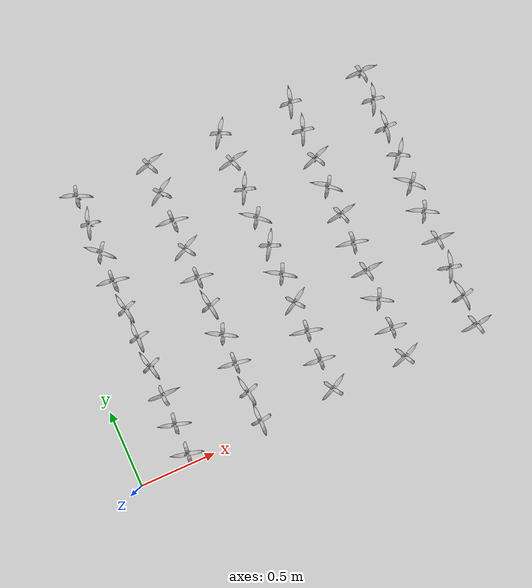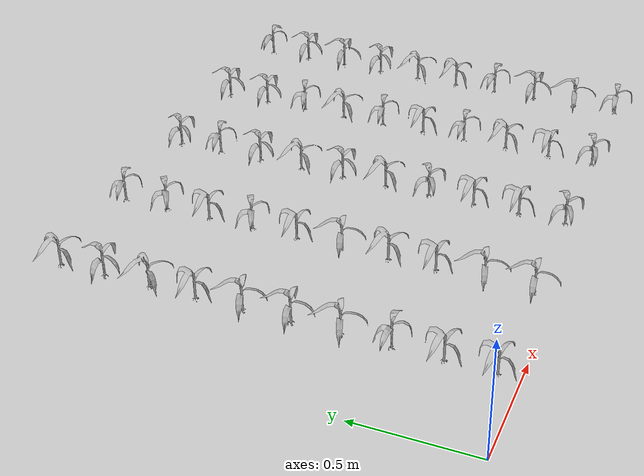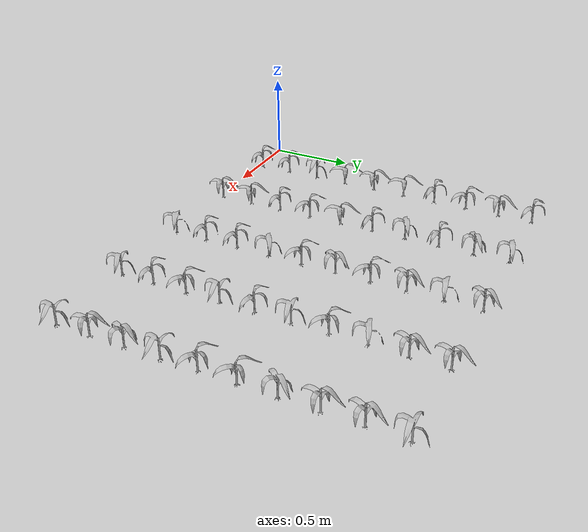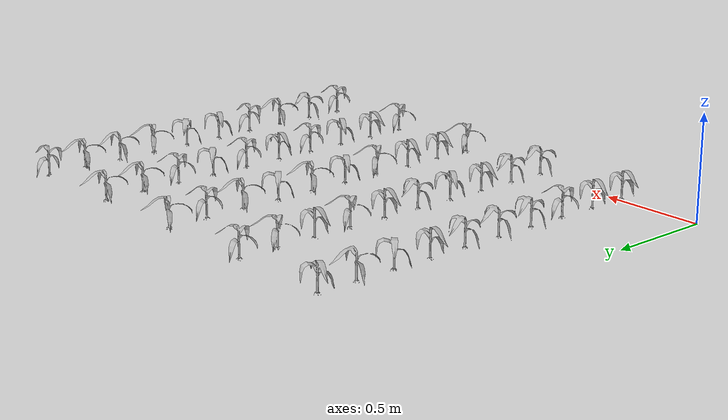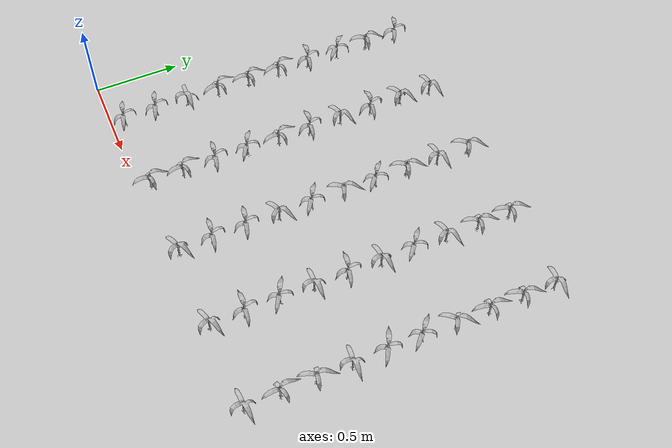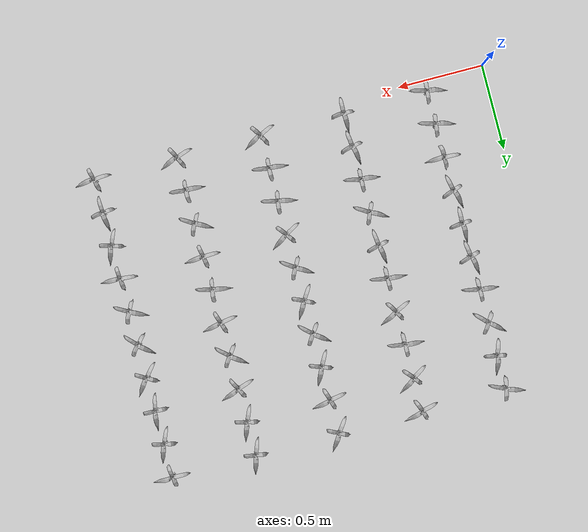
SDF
<sdf version="1.7">
 <world name="default">
  <model name="maize_0.36262630970692733_0.07500000000000018">
   <static>1</static>
   <link name="link">
    <inertial>
     <mass>0.2</mass>
     <inertia>
      <ixx>0.166667</ixx>
      <ixy>0</ixy>
      <ixz>0</ixz>
      <iyy>0.166667</iyy>
      <iyz>0</iyz>
      <izz>0.166667</izz>
     </inertia>
    </inertial>
    <collision name="collision">
     <geometry><mesh><uri>model://corn_3/meshes/corn.dae</uri><scale>0.25 0.25 0.25</scale></mesh></geometry>
     <surface>
      <friction><ode><mu>0</mu><mu2>0</mu2></ode></friction>
      <contact><ode><kp>0</kp><kd>0</kd><max_vel>0</max_vel><min_depth>0.002</min_depth></ode></contact>
     </surface>
    </collision>
    <visual name="visual">
     <geometry><mesh><uri>model://corn_3/meshes/corn.dae</uri><scale>0.25 0.25 0.25</scale></mesh></geometry>
    </visual>
    <velocity_decay><linear>0</linear><angular>0</angular></velocity_decay>
   </link>
   <pose>0.362626 0.075 0.05 0 -0 2.95602</pose>
  </model>
  <model name="maize_0.36262630970692733_0.27000000000000046">
   <static>1</static>
   <link name="link">
    <inertial>
     <mass>0.2</mass>
     <inertia>
      <ixx>0.166667</ixx>
      <ixy>0</ixy>
      <ixz>0</ixz>
      <iyy>0.166667</iyy>
      <iyz>0</iyz>
      <izz>0.166667</izz>
     </inertia>
    </inertial>
    <collision name="collision">
     <geometry><mesh><uri>model://corn_3/meshes/corn.dae</uri><scale>0.25 0.25 0.25</scale></mesh></geometry>
     <surface>
      <friction><ode><mu>0</mu><mu2>0</mu2></ode></friction>
      <contact><ode><kp>0</kp><kd>0</kd><max_vel>0</max_vel><min_depth>0.002</min_depth></ode></contact>
     </surface>
    </collision>
    <visual name="visual">
     <geometry><mesh><uri>model://corn_3/meshes/corn.dae</uri><scale>0.25 0.25 0.25</scale></mesh></geometry>
    </visual>
    <velocity_decay><linear>0</linear><angular>0</angular></velocity_decay>
   </link>
   <pose>0.362626 0.27 0.05 0 -0 2.93047</pose>
  </model>
  <model name="maize_0.36262630970692733_0.46500000000000075">
   <static>1</static>
   <link name="link">
    <inertial>
     <mass>0.2</mass>
     <inertia>
      <ixx>0.166667</ixx>
      <ixy>0</ixy>
      <ixz>0</ixz>
      <iyy>0.166667</iyy>
      <iyz>0</iyz>
      <izz>0.166667</izz>
     </inertia>
    </inertial>
    <collision name="collision">
     <geometry><mesh><uri>model://corn_3/meshes/corn.dae</uri><scale>0.25 0.25 0.25</scale></mesh></geometry>
     <surface>
      <friction><ode><mu>0</mu><mu2>0</mu2></ode></friction>
      <contact><ode><kp>0</kp><kd>0</kd><max_vel>0</max_vel><min_depth>0.002</min_depth></ode></contact>
     </surface>
    </collision>
    <visual name="visual">
     <geometry><mesh><uri>model://corn_3/meshes/corn.dae</uri><scale>0.25 0.25 0.25</scale></mesh></geometry>
    </visual>
    <velocity_decay><linear>0</linear><angular>0</angular></velocity_decay>
   </link>
   <pose>0.362626 0.465 0.05 0 -0 0.049431</pose>
  </model>
  <model name="maize_0.36262630970692733_0.6600000000000001">
   <static>1</static>
   <link name="link">
    <inertial>
     <mass>0.2</mass>
     <inertia>
      <ixx>0.166667</ixx>
      <ixy>0</ixy>
      <ixz>0</ixz>
      <iyy>0.166667</iyy>
      <iyz>0</iyz>
      <izz>0.166667</izz>
     </inertia>
    </inertial>
    <collision name="collision">
     <geometry><mesh><uri>model://corn_3/meshes/corn.dae</uri><scale>0.25 0.25 0.25</scale></mesh></geometry>
     <surface>
      <friction><ode><mu>0</mu><mu2>0</mu2></ode></friction>
      <contact><ode><kp>0</kp><kd>0</kd><max_vel>0</max_vel><min_depth>0.002</min_depth></ode></contact>
     </surface>
    </collision>
    <visual name="visual">
     <geometry><mesh><uri>model://corn_3/meshes/corn.dae</uri><scale>0.25 0.25 0.25</scale></mesh></geometry>
    </visual>
    <velocity_decay><linear>0</linear><angular>0</angular></velocity_decay>
   </link>
   <pose>0.362626 0.66 0.05 0 -0 1.87665</pose>
  </model>
  <model name="maize_0.36262630970692733_0.8550000000000004">
   <static>1</static>
   <link name="link">
    <inertial>
     <mass>0.2</mass>
     <inertia>
      <ixx>0.166667</ixx>
      <ixy>0</ixy>
      <ixz>0</ixz>
      <iyy>0.166667</iyy>
      <iyz>0</iyz>
      <izz>0.166667</izz>
     </inertia>
    </inertial>
    <collision name="collision">
     <geometry><mesh><uri>model://corn_3/meshes/corn.dae</uri><scale>0.25 0.25 0.25</scale></mesh></geometry>
     <surface>
      <friction><ode><mu>0</mu><mu2>0</mu2></ode></friction>
      <contact><ode><kp>0</kp><kd>0</kd><max_vel>0</max_vel><min_depth>0.002</min_depth></ode></contact>
     </surface>
    </collision>
    <visual name="visual">
     <geometry><mesh><uri>model://corn_3/meshes/corn.dae</uri><scale>0.25 0.25 0.25</scale></mesh></geometry>
    </visual>
    <velocity_decay><linear>0</linear><angular>0</angular></velocity_decay>
   </link>
   <pose>0.362626 0.855 0.05 0 -0 1.62809</pose>
  </model>
  <model name="maize_0.36262630970692733_1.0500000000000007">
   <static>1</static>
   <link name="link">
    <inertial>
     <mass>0.2</mass>
     <inertia>
      <ixx>0.166667</ixx>
      <ixy>0</ixy>
      <ixz>0</ixz>
      <iyy>0.166667</iyy>
      <iyz>0</iyz>
      <izz>0.166667</izz>
     </inertia>
    </inertial>
    <collision name="collision">
     <geometry><mesh><uri>model://corn_3/meshes/corn.dae</uri><scale>0.25 0.25 0.25</scale></mesh></geometry>
     <surface>
      <friction><ode><mu>0</mu><mu2>0</mu2></ode></friction>
      <contact><ode><kp>0</kp><kd>0</kd><max_vel>0</max_vel><min_depth>0.002</min_depth></ode></contact>
     </surface>
    </collision>
    <visual name="visual">
     <geometry><mesh><uri>model://corn_3/meshes/corn.dae</uri><scale>0.25 0.25 0.25</scale></mesh></geometry>
    </visual>
    <velocity_decay><linear>0</linear><angular>0</angular></velocity_decay>
   </link>
   <pose>0.362626 1.05 0.05 0 -0 1.81461</pose>
  </model>
  <model name="maize_0.36262630970692733_1.245">
   <static>1</static>
   <link name="link">
    <inertial>
     <mass>0.2</mass>
     <inertia>
      <ixx>0.166667</ixx>
      <ixy>0</ixy>
      <ixz>0</ixz>
      <iyy>0.166667</iyy>
      <iyz>0</iyz>
      <izz>0.166667</izz>
     </inertia>
    </inertial>
    <collision name="collision">
     <geometry><mesh><uri>model://corn_3/meshes/corn.dae</uri><scale>0.25 0.25 0.25</scale></mesh></geometry>
     <surface>
      <friction><ode><mu>0</mu><mu2>0</mu2></ode></friction>
      <contact><ode><kp>0</kp><kd>0</kd><max_vel>0</max_vel><min_depth>0.002</min_depth></ode></contact>
     </surface>
    </collision>
    <visual name="visual">
     <geometry><mesh><uri>model://corn_3/meshes/corn.dae</uri><scale>0.25 0.25 0.25</scale></mesh></geometry>
    </visual>
    <velocity_decay><linear>0</linear><angular>0</angular></velocity_decay>
   </link>
   <pose>0.362626 1.245 0.05 0 -0 3.04414</pose>
  </model>
  <model name="maize_0.36262630970692733_1.4400000000000004">
   <static>1</static>
   <link name="link">
    <inertial>
     <mass>0.2</mass>
     <inertia>
      <ixx>0.166667</ixx>
      <ixy>0</ixy>
      <ixz>0</ixz>
      <iyy>0.166667</iyy>
      <iyz>0</iyz>
      <izz>0.166667</izz>
     </inertia>
    </inertial>
    <collision name="collision">
     <geometry><mesh><uri>model://corn_3/meshes/corn.dae</uri><scale>0.25 0.25 0.25</scale></mesh></geometry>
     <surface>
      <friction><ode><mu>0</mu><mu2>0</mu2></ode></friction>
      <contact><ode><kp>0</kp><kd>0</kd><max_vel>0</max_vel><min_depth>0.002</min_depth></ode></contact>
     </surface>
    </collision>
    <visual name="visual">
     <geometry><mesh><uri>model://corn_3/meshes/corn.dae</uri><scale>0.25 0.25 0.25</scale></mesh></geometry>
    </visual>
    <velocity_decay><linear>0</linear><angular>0</angular></velocity_decay>
   </link>
   <pose>0.362626 1.44 0.05 0 -0 2.4562</pose>
  </model>
  <model name="maize_0.36262630970692733_1.6350000000000007">
   <static>1</static>
   <link name="link">
    <inertial>
     <mass>0.2</mass>
     <inertia>
      <ixx>0.166667</ixx>
      <ixy>0</ixy>
      <ixz>0</ixz>
      <iyy>0.166667</iyy>
      <iyz>0</iyz>
      <izz>0.166667</izz>
     </inertia>
    </inertial>
    <collision name="collision">
     <geometry><mesh><uri>model://corn_3/meshes/corn.dae</uri><scale>0.25 0.25 0.25</scale></mesh></geometry>
     <surface>
      <friction><ode><mu>0</mu><mu2>0</mu2></ode></friction>
      <contact><ode><kp>0</kp><kd>0</kd><max_vel>0</max_vel><min_depth>0.002</min_depth></ode></contact>
     </surface>
    </collision>
    <visual name="visual">
     <geometry><mesh><uri>model://corn_3/meshes/corn.dae</uri><scale>0.25 0.25 0.25</scale></mesh></geometry>
    </visual>
    <velocity_decay><linear>0</linear><angular>0</angular></velocity_decay>
   </link>
   <pose>0.362626 1.635 0.05 0 -0 1.32582</pose>
  </model>
  <model name="maize_0.36262630970692733_1.83">
   <static>1</static>
   <link name="link">
    <inertial>
     <mass>0.2</mass>
     <inertia>
      <ixx>0.166667</ixx>
      <ixy>0</ixy>
      <ixz>0</ixz>
      <iyy>0.166667</iyy>
      <iyz>0</iyz>
      <izz>0.166667</izz>
     </inertia>
    </inertial>
    <collision name="collision">
     <geometry><mesh><uri>model://corn_3/meshes/corn.dae</uri><scale>0.25 0.25 0.25</scale></mesh></geometry>
     <surface>
      <friction><ode><mu>0</mu><mu2>0</mu2></ode></friction>
      <contact><ode><kp>0</kp><kd>0</kd><max_vel>0</max_vel><min_depth>0.002</min_depth></ode></contact>
     </surface>
    </collision>
    <visual name="visual">
     <geometry><mesh><uri>model://corn_3/meshes/corn.dae</uri><scale>0.25 0.25 0.25</scale></mesh></geometry>
    </visual>
    <velocity_decay><linear>0</linear><angular>0</angular></velocity_decay>
   </link>
   <pose>0.362626 1.83 0.05 0 -0 2.8193</pose>
  </model>
  <model name="maize_0.8547947739721122_0.07500000000000018">
   <static>1</static>
   <link name="link">
    <inertial>
     <mass>0.2</mass>
     <inertia>
      <ixx>0.166667</ixx>
      <ixy>0</ixy>
      <ixz>0</ixz>
      <iyy>0.166667</iyy>
      <iyz>0</iyz>
      <izz>0.166667</izz>
     </inertia>
    </inertial>
    <collision name="collision">
     <geometry><mesh><uri>model://corn_3/meshes/corn.dae</uri><scale>0.25 0.25 0.25</scale></mesh></geometry>
     <surface>
      <friction><ode><mu>0</mu><mu2>0</mu2></ode></friction>
      <contact><ode><kp>0</kp><kd>0</kd><max_vel>0</max_vel><min_depth>0.002</min_depth></ode></contact>
     </surface>
    </collision>
    <visual name="visual">
     <geometry><mesh><uri>model://corn_3/meshes/corn.dae</uri><scale>0.25 0.25 0.25</scale></mesh></geometry>
    </visual>
    <velocity_decay><linear>0</linear><angular>0</angular></velocity_decay>
   </link>
   <pose>0.854795 0.075 0.05 0 -0 1.63086</pose>
  </model>
  <model name="maize_0.8547947739721122_0.27000000000000046">
   <static>1</static>
   <link name="link">
    <inertial>
     <mass>0.2</mass>
     <inertia>
      <ixx>0.166667</ixx>
      <ixy>0</ixy>
      <ixz>0</ixz>
      <iyy>0.166667</iyy>
      <iyz>0</iyz>
      <izz>0.166667</izz>
     </inertia>
    </inertial>
    <collision name="collision">
     <geometry><mesh><uri>model://corn_3/meshes/corn.dae</uri><scale>0.25 0.25 0.25</scale></mesh></geometry>
     <surface>
      <friction><ode><mu>0</mu><mu2>0</mu2></ode></friction>
      <contact><ode><kp>0</kp><kd>0</kd><max_vel>0</max_vel><min_depth>0.002</min_depth></ode></contact>
     </surface>
    </collision>
    <visual name="visual">
     <geometry><mesh><uri>model://corn_3/meshes/corn.dae</uri><scale>0.25 0.25 0.25</scale></mesh></geometry>
    </visual>
    <velocity_decay><linear>0</linear><angular>0</angular></velocity_decay>
   </link>
   <pose>0.854795 0.27 0.05 0 -0 1.79603</pose>
  </model>
  <model name="maize_0.8547947739721122_0.46500000000000075">
   <static>1</static>
   <link name="link">
    <inertial>
     <mass>0.2</mass>
     <inertia>
      <ixx>0.166667</ixx>
      <ixy>0</ixy>
      <ixz>0</ixz>
      <iyy>0.166667</iyy>
      <iyz>0</iyz>
      <izz>0.166667</izz>
     </inertia>
    </inertial>
    <collision name="collision">
     <geometry><mesh><uri>model://corn_3/meshes/corn.dae</uri><scale>0.25 0.25 0.25</scale></mesh></geometry>
     <surface>
      <friction><ode><mu>0</mu><mu2>0</mu2></ode></friction>
      <contact><ode><kp>0</kp><kd>0</kd><max_vel>0</max_vel><min_depth>0.002</min_depth></ode></contact>
     </surface>
    </collision>
    <visual name="visual">
     <geometry><mesh><uri>model://corn_3/meshes/corn.dae</uri><scale>0.25 0.25 0.25</scale></mesh></geometry>
    </visual>
    <velocity_decay><linear>0</linear><angular>0</angular></velocity_decay>
   </link>
   <pose>0.854795 0.465 0.05 0 -0 3.04919</pose>
  </model>
  <model name="maize_0.8547947739721122_0.6600000000000001">
   <static>1</static>
   <link name="link">
    <inertial>
     <mass>0.2</mass>
     <inertia>
      <ixx>0.166667</ixx>
      <ixy>0</ixy>
      <ixz>0</ixz>
      <iyy>0.166667</iyy>
      <iyz>0</iyz>
      <izz>0.166667</izz>
     </inertia>
    </inertial>
    <collision name="collision">
     <geometry><mesh><uri>model://corn_3/meshes/corn.dae</uri><scale>0.25 0.25 0.25</scale></mesh></geometry>
     <surface>
      <friction><ode><mu>0</mu><mu2>0</mu2></ode></friction>
      <contact><ode><kp>0</kp><kd>0</kd><max_vel>0</max_vel><min_depth>0.002</min_depth></ode></contact>
     </surface>
    </collision>
    <visual name="visual">
     <geometry><mesh><uri>model://corn_3/meshes/corn.dae</uri><scale>0.25 0.25 0.25</scale></mesh></geometry>
    </visual>
    <velocity_decay><linear>0</linear><angular>0</angular></velocity_decay>
   </link>
   <pose>0.854795 0.66 0.05 0 -0 2.68301</pose>
  </model>
  <model name="maize_0.8547947739721122_0.8550000000000004">
   <static>1</static>
   <link name="link">
    <inertial>
     <mass>0.2</mass>
     <inertia>
      <ixx>0.166667</ixx>
      <ixy>0</ixy>
      <ixz>0</ixz>
      <iyy>0.166667</iyy>
      <iyz>0</iyz>
      <izz>0.166667</izz>
     </inertia>
    </inertial>
    <collision name="collision">
     <geometry><mesh><uri>model://corn_3/meshes/corn.dae</uri><scale>0.25 0.25 0.25</scale></mesh></geometry>
     <surface>
      <friction><ode><mu>0</mu><mu2>0</mu2></ode></friction>
      <contact><ode><kp>0</kp><kd>0</kd><max_vel>0</max_vel><min_depth>0.002</min_depth></ode></contact>
     </surface>
    </collision>
    <visual name="visual">
     <geometry><mesh><uri>model://corn_3/meshes/corn.dae</uri><scale>0.25 0.25 0.25</scale></mesh></geometry>
    </visual>
    <velocity_decay><linear>0</linear><angular>0</angular></velocity_decay>
   </link>
   <pose>0.854795 0.855 0.05 0 -0 1.78013</pose>
  </model>
  <model name="maize_0.8547947739721122_1.0500000000000007">
   <static>1</static>
   <link name="link">
    <inertial>
     <mass>0.2</mass>
     <inertia>
      <ixx>0.166667</ixx>
      <ixy>0</ixy>
      <ixz>0</ixz>
      <iyy>0.166667</iyy>
      <iyz>0</iyz>
      <izz>0.166667</izz>
     </inertia>
    </inertial>
    <collision name="collision">
     <geometry><mesh><uri>model://corn_3/meshes/corn.dae</uri><scale>0.25 0.25 0.25</scale></mesh></geometry>
     <surface>
      <friction><ode><mu>0</mu><mu2>0</mu2></ode></friction>
      <contact><ode><kp>0</kp><kd>0</kd><max_vel>0</max_vel><min_depth>0.002</min_depth></ode></contact>
     </surface>
    </collision>
    <visual name="visual">
     <geometry><mesh><uri>model://corn_3/meshes/corn.dae</uri><scale>0.25 0.25 0.25</scale></mesh></geometry>
    </visual>
    <velocity_decay><linear>0</linear><angular>0</angular></velocity_decay>
   </link>
   <pose>0.854795 1.05 0.05 0 -0 3.08009</pose>
  </model>
  <model name="maize_0.8547947739721122_1.245">
   <static>1</static>
   <link name="link">
    <inertial>
     <mass>0.2</mass>
     <inertia>
      <ixx>0.166667</ixx>
      <ixy>0</ixy>
      <ixz>0</ixz>
      <iyy>0.166667</iyy>
      <iyz>0</iyz>
      <izz>0.166667</izz>
     </inertia>
    </inertial>
    <collision name="collision">
     <geometry><mesh><uri>model://corn_3/meshes/corn.dae</uri><scale>0.25 0.25 0.25</scale></mesh></geometry>
     <surface>
      <friction><ode><mu>0</mu><mu2>0</mu2></ode></friction>
      <contact><ode><kp>0</kp><kd>0</kd><max_vel>0</max_vel><min_depth>0.002</min_depth></ode></contact>
     </surface>
    </collision>
    <visual name="visual">
     <geometry><mesh><uri>model://corn_3/meshes/corn.dae</uri><scale>0.25 0.25 0.25</scale></mesh></geometry>
    </visual>
    <velocity_decay><linear>0</linear><angular>0</angular></velocity_decay>
   </link>
   <pose>0.854795 1.245 0.05 0 -0 0.519757</pose>
  </model>
  <model name="maize_0.8547947739721122_1.4400000000000004">
   <static>1</static>
   <link name="link">
    <inertial>
     <mass>0.2</mass>
     <inertia>
      <ixx>0.166667</ixx>
      <ixy>0</ixy>
      <ixz>0</ixz>
      <iyy>0.166667</iyy>
      <iyz>0</iyz>
      <izz>0.166667</izz>
     </inertia>
    </inertial>
    <collision name="collision">
     <geometry><mesh><uri>model://corn_3/meshes/corn.dae</uri><scale>0.25 0.25 0.25</scale></mesh></geometry>
     <surface>
      <friction><ode><mu>0</mu><mu2>0</mu2></ode></friction>
      <contact><ode><kp>0</kp><kd>0</kd><max_vel>0</max_vel><min_depth>0.002</min_depth></ode></contact>
     </surface>
    </collision>
    <visual name="visual">
     <geometry><mesh><uri>model://corn_3/meshes/corn.dae</uri><scale>0.25 0.25 0.25</scale></mesh></geometry>
    </visual>
    <velocity_decay><linear>0</linear><angular>0</angular></velocity_decay>
   </link>
   <pose>0.854795 1.44 0.05 0 -0 3.07723</pose>
  </model>
  <model name="maize_0.8547947739721122_1.6350000000000007">
   <static>1</static>
   <link name="link">
    <inertial>
     <mass>0.2</mass>
     <inertia>
      <ixx>0.166667</ixx>
      <ixy>0</ixy>
      <ixz>0</ixz>
      <iyy>0.166667</iyy>
      <iyz>0</iyz>
      <izz>0.166667</izz>
     </inertia>
    </inertial>
    <collision name="collision">
     <geometry><mesh><uri>model://corn_3/meshes/corn.dae</uri><scale>0.25 0.25 0.25</scale></mesh></geometry>
     <surface>
      <friction><ode><mu>0</mu><mu2>0</mu2></ode></friction>
      <contact><ode><kp>0</kp><kd>0</kd><max_vel>0</max_vel><min_depth>0.002</min_depth></ode></contact>
     </surface>
    </collision>
    <visual name="visual">
     <geometry><mesh><uri>model://corn_3/meshes/corn.dae</uri><scale>0.25 0.25 0.25</scale></mesh></geometry>
    </visual>
    <velocity_decay><linear>0</linear><angular>0</angular></velocity_decay>
   </link>
   <pose>0.854795 1.635 0.05 0 -0 0.648578</pose>
  </model>
  <model name="maize_0.8547947739721122_1.83">
   <static>1</static>
   <link name="link">
    <inertial>
     <mass>0.2</mass>
     <inertia>
      <ixx>0.166667</ixx>
      <ixy>0</ixy>
      <ixz>0</ixz>
      <iyy>0.166667</iyy>
      <iyz>0</iyz>
      <izz>0.166667</izz>
     </inertia>
    </inertial>
    <collision name="collision">
     <geometry><mesh><uri>model://corn_3/meshes/corn.dae</uri><scale>0.25 0.25 0.25</scale></mesh></geometry>
     <surface>
      <friction><ode><mu>0</mu><mu2>0</mu2></ode></friction>
      <contact><ode><kp>0</kp><kd>0</kd><max_vel>0</max_vel><min_depth>0.002</min_depth></ode></contact>
     </surface>
    </collision>
    <visual name="visual">
     <geometry><mesh><uri>model://corn_3/meshes/corn.dae</uri><scale>0.25 0.25 0.25</scale></mesh></geometry>
    </visual>
    <velocity_decay><linear>0</linear><angular>0</angular></velocity_decay>
   </link>
   <pose>0.854795 1.83 0.05 0 -0 0.327598</pose>
  </model>
  <model name="maize_1.346222194063599_0.07500000000000018">
   <static>1</static>
   <link name="link">
    <inertial>
     <mass>0.2</mass>
     <inertia>
      <ixx>0.166667</ixx>
      <ixy>0</ixy>
      <ixz>0</ixz>
      <iyy>0.166667</iyy>
      <iyz>0</iyz>
      <izz>0.166667</izz>
     </inertia>
    </inertial>
    <collision name="collision">
     <geometry><mesh><uri>model://corn_3/meshes/corn.dae</uri><scale>0.25 0.25 0.25</scale></mesh></geometry>
     <surface>
      <friction><ode><mu>0</mu><mu2>0</mu2></ode></friction>
      <contact><ode><kp>0</kp><kd>0</kd><max_vel>0</max_vel><min_depth>0.002</min_depth></ode></contact>
     </surface>
    </collision>
    <visual name="visual">
     <geometry><mesh><uri>model://corn_3/meshes/corn.dae</uri><scale>0.25 0.25 0.25</scale></mesh></geometry>
    </visual>
    <velocity_decay><linear>0</linear><angular>0</angular></velocity_decay>
   </link>
   <pose>1.34622 0.075 0.05 0 -0 0.538055</pose>
  </model>
  <model name="maize_1.346222194063599_0.27000000000000046">
   <static>1</static>
   <link name="link">
    <inertial>
     <mass>0.2</mass>
     <inertia>
      <ixx>0.166667</ixx>
      <ixy>0</ixy>
      <ixz>0</ixz>
      <iyy>0.166667</iyy>
      <iyz>0</iyz>
      <izz>0.166667</izz>
     </inertia>
    </inertial>
    <collision name="collision">
     <geometry><mesh><uri>model://corn_3/meshes/corn.dae</uri><scale>0.25 0.25 0.25</scale></mesh></geometry>
     <surface>
      <friction><ode><mu>0</mu><mu2>0</mu2></ode></friction>
      <contact><ode><kp>0</kp><kd>0</kd><max_vel>0</max_vel><min_depth>0.002</min_depth></ode></contact>
     </surface>
    </collision>
    <visual name="visual">
     <geometry><mesh><uri>model://corn_3/meshes/corn.dae</uri><scale>0.25 0.25 0.25</scale></mesh></geometry>
    </visual>
    <velocity_decay><linear>0</linear><angular>0</angular></velocity_decay>
   </link>
   <pose>1.34622 0.27 0.05 0 -0 3.08143</pose>
  </model>
  <model name="maize_1.346222194063599_0.46500000000000075">
   <static>1</static>
   <link name="link">
    <inertial>
     <mass>0.2</mass>
     <inertia>
      <ixx>0.166667</ixx>
      <ixy>0</ixy>
      <ixz>0</ixz>
      <iyy>0.166667</iyy>
      <iyz>0</iyz>
      <izz>0.166667</izz>
     </inertia>
    </inertial>
    <collision name="collision">
     <geometry><mesh><uri>model://corn_3/meshes/corn.dae</uri><scale>0.25 0.25 0.25</scale></mesh></geometry>
     <surface>
      <friction><ode><mu>0</mu><mu2>0</mu2></ode></friction>
      <contact><ode><kp>0</kp><kd>0</kd><max_vel>0</max_vel><min_depth>0.002</min_depth></ode></contact>
     </surface>
    </collision>
    <visual name="visual">
     <geometry><mesh><uri>model://corn_3/meshes/corn.dae</uri><scale>0.25 0.25 0.25</scale></mesh></geometry>
    </visual>
    <velocity_decay><linear>0</linear><angular>0</angular></velocity_decay>
   </link>
   <pose>1.34622 0.465 0.05 0 -0 2.9849</pose>
  </model>
  <model name="maize_1.346222194063599_0.6600000000000001">
   <static>1</static>
   <link name="link">
    <inertial>
     <mass>0.2</mass>
     <inertia>
      <ixx>0.166667</ixx>
      <ixy>0</ixy>
      <ixz>0</ixz>
      <iyy>0.166667</iyy>
      <iyz>0</iyz>
      <izz>0.166667</izz>
     </inertia>
    </inertial>
    <collision name="collision">
     <geometry><mesh><uri>model://corn_3/meshes/corn.dae</uri><scale>0.25 0.25 0.25</scale></mesh></geometry>
     <surface>
      <friction><ode><mu>0</mu><mu2>0</mu2></ode></friction>
      <contact><ode><kp>0</kp><kd>0</kd><max_vel>0</max_vel><min_depth>0.002</min_depth></ode></contact>
     </surface>
    </collision>
    <visual name="visual">
     <geometry><mesh><uri>model://corn_3/meshes/corn.dae</uri><scale>0.25 0.25 0.25</scale></mesh></geometry>
    </visual>
    <velocity_decay><linear>0</linear><angular>0</angular></velocity_decay>
   </link>
   <pose>1.34622 0.66 0.05 0 -0 0.620927</pose>
  </model>
  <model name="maize_1.346222194063599_0.8550000000000004">
   <static>1</static>
   <link name="link">
    <inertial>
     <mass>0.2</mass>
     <inertia>
      <ixx>0.166667</ixx>
      <ixy>0</ixy>
      <ixz>0</ixz>
      <iyy>0.166667</iyy>
      <iyz>0</iyz>
      <izz>0.166667</izz>
     </inertia>
    </inertial>
    <collision name="collision">
     <geometry><mesh><uri>model://corn_3/meshes/corn.dae</uri><scale>0.25 0.25 0.25</scale></mesh></geometry>
     <surface>
      <friction><ode><mu>0</mu><mu2>0</mu2></ode></friction>
      <contact><ode><kp>0</kp><kd>0</kd><max_vel>0</max_vel><min_depth>0.002</min_depth></ode></contact>
     </surface>
    </collision>
    <visual name="visual">
     <geometry><mesh><uri>model://corn_3/meshes/corn.dae</uri><scale>0.25 0.25 0.25</scale></mesh></geometry>
    </visual>
    <velocity_decay><linear>0</linear><angular>0</angular></velocity_decay>
   </link>
   <pose>1.34622 0.855 0.05 0 -0 2.62785</pose>
  </model>
  <model name="maize_1.346222194063599_1.0500000000000007">
   <static>1</static>
   <link name="link">
    <inertial>
     <mass>0.2</mass>
     <inertia>
      <ixx>0.166667</ixx>
      <ixy>0</ixy>
      <ixz>0</ixz>
      <iyy>0.166667</iyy>
      <iyz>0</iyz>
      <izz>0.166667</izz>
     </inertia>
    </inertial>
    <collision name="collision">
     <geometry><mesh><uri>model://corn_3/meshes/corn.dae</uri><scale>0.25 0.25 0.25</scale></mesh></geometry>
     <surface>
      <friction><ode><mu>0</mu><mu2>0</mu2></ode></friction>
      <contact><ode><kp>0</kp><kd>0</kd><max_vel>0</max_vel><min_depth>0.002</min_depth></ode></contact>
     </surface>
    </collision>
    <visual name="visual">
     <geometry><mesh><uri>model://corn_3/meshes/corn.dae</uri><scale>0.25 0.25 0.25</scale></mesh></geometry>
    </visual>
    <velocity_decay><linear>0</linear><angular>0</angular></velocity_decay>
   </link>
   <pose>1.34622 1.05 0.05 0 -0 1.09543</pose>
  </model>
  <model name="maize_1.346222194063599_1.245">
   <static>1</static>
   <link name="link">
    <inertial>
     <mass>0.2</mass>
     <inertia>
      <ixx>0.166667</ixx>
      <ixy>0</ixy>
      <ixz>0</ixz>
      <iyy>0.166667</iyy>
      <iyz>0</iyz>
      <izz>0.166667</izz>
     </inertia>
    </inertial>
    <collision name="collision">
     <geometry><mesh><uri>model://corn_3/meshes/corn.dae</uri><scale>0.25 0.25 0.25</scale></mesh></geometry>
     <surface>
      <friction><ode><mu>0</mu><mu2>0</mu2></ode></friction>
      <contact><ode><kp>0</kp><kd>0</kd><max_vel>0</max_vel><min_depth>0.002</min_depth></ode></contact>
     </surface>
    </collision>
    <visual name="visual">
     <geometry><mesh><uri>model://corn_3/meshes/corn.dae</uri><scale>0.25 0.25 0.25</scale></mesh></geometry>
    </visual>
    <velocity_decay><linear>0</linear><angular>0</angular></velocity_decay>
   </link>
   <pose>1.34622 1.245 0.05 0 -0 2.50775</pose>
  </model>
  <model name="maize_1.346222194063599_1.4400000000000004">
   <static>1</static>
   <link name="link">
    <inertial>
     <mass>0.2</mass>
     <inertia>
      <ixx>0.166667</ixx>
      <ixy>0</ixy>
      <ixz>0</ixz>
      <iyy>0.166667</iyy>
      <iyz>0</iyz>
      <izz>0.166667</izz>
     </inertia>
    </inertial>
    <collision name="collision">
     <geometry><mesh><uri>model://corn_3/meshes/corn.dae</uri><scale>0.25 0.25 0.25</scale></mesh></geometry>
     <surface>
      <friction><ode><mu>0</mu><mu2>0</mu2></ode></friction>
      <contact><ode><kp>0</kp><kd>0</kd><max_vel>0</max_vel><min_depth>0.002</min_depth></ode></contact>
     </surface>
    </collision>
    <visual name="visual">
     <geometry><mesh><uri>model://corn_3/meshes/corn.dae</uri><scale>0.25 0.25 0.25</scale></mesh></geometry>
    </visual>
    <velocity_decay><linear>0</linear><angular>0</angular></velocity_decay>
   </link>
   <pose>1.34622 1.44 0.05 0 -0 1.16475</pose>
  </model>
  <model name="maize_1.346222194063599_1.6350000000000007">
   <static>1</static>
   <link name="link">
    <inertial>
     <mass>0.2</mass>
     <inertia>
      <ixx>0.166667</ixx>
      <ixy>0</ixy>
      <ixz>0</ixz>
      <iyy>0.166667</iyy>
      <iyz>0</iyz>
      <izz>0.166667</izz>
     </inertia>
    </inertial>
    <collision name="collision">
     <geometry><mesh><uri>model://corn_3/meshes/corn.dae</uri><scale>0.25 0.25 0.25</scale></mesh></geometry>
     <surface>
      <friction><ode><mu>0</mu><mu2>0</mu2></ode></friction>
      <contact><ode><kp>0</kp><kd>0</kd><max_vel>0</max_vel><min_depth>0.002</min_depth></ode></contact>
     </surface>
    </collision>
    <visual name="visual">
     <geometry><mesh><uri>model://corn_3/meshes/corn.dae</uri><scale>0.25 0.25 0.25</scale></mesh></geometry>
    </visual>
    <velocity_decay><linear>0</linear><angular>0</angular></velocity_decay>
   </link>
   <pose>1.34622 1.635 0.05 0 -0 0.258042</pose>
  </model>
  <model name="maize_1.346222194063599_1.83">
   <static>1</static>
   <link name="link">
    <inertial>
     <mass>0.2</mass>
     <inertia>
      <ixx>0.166667</ixx>
      <ixy>0</ixy>
      <ixz>0</ixz>
      <iyy>0.166667</iyy>
      <iyz>0</iyz>
      <izz>0.166667</izz>
     </inertia>
    </inertial>
    <collision name="collision">
     <geometry><mesh><uri>model://corn_3/meshes/corn.dae</uri><scale>0.25 0.25 0.25</scale></mesh></geometry>
     <surface>
      <friction><ode><mu>0</mu><mu2>0</mu2></ode></friction>
      <contact><ode><kp>0</kp><kd>0</kd><max_vel>0</max_vel><min_depth>0.002</min_depth></ode></contact>
     </surface>
    </collision>
    <visual name="visual">
     <geometry><mesh><uri>model://corn_3/meshes/corn.dae</uri><scale>0.25 0.25 0.25</scale></mesh></geometry>
    </visual>
    <velocity_decay><linear>0</linear><angular>0</angular></velocity_decay>
   </link>
   <pose>1.34622 1.83 0.05 0 -0 1.03125</pose>
  </model>
  <model name="maize_1.8369094047028893_0.07500000000000018">
   <static>1</static>
   <link name="link">
    <inertial>
     <mass>0.2</mass>
     <inertia>
      <ixx>0.166667</ixx>
      <ixy>0</ixy>
      <ixz>0</ixz>
      <iyy>0.166667</iyy>
      <iyz>0</iyz>
      <izz>0.166667</izz>
     </inertia>
    </inertial>
    <collision name="collision">
     <geometry><mesh><uri>model://corn_3/meshes/corn.dae</uri><scale>0.25 0.25 0.25</scale></mesh></geometry>
     <surface>
      <friction><ode><mu>0</mu><mu2>0</mu2></ode></friction>
      <contact><ode><kp>0</kp><kd>0</kd><max_vel>0</max_vel><min_depth>0.002</min_depth></ode></contact>
     </surface>
    </collision>
    <visual name="visual">
     <geometry><mesh><uri>model://corn_3/meshes/corn.dae</uri><scale>0.25 0.25 0.25</scale></mesh></geometry>
    </visual>
    <velocity_decay><linear>0</linear><angular>0</angular></velocity_decay>
   </link>
   <pose>1.83691 0.075 0.05 0 -0 0.425918</pose>
  </model>
  <model name="maize_1.8369094047028893_0.27000000000000046">
   <static>1</static>
   <link name="link">
    <inertial>
     <mass>0.2</mass>
     <inertia>
      <ixx>0.166667</ixx>
      <ixy>0</ixy>
      <ixz>0</ixz>
      <iyy>0.166667</iyy>
      <iyz>0</iyz>
      <izz>0.166667</izz>
     </inertia>
    </inertial>
    <collision name="collision">
     <geometry><mesh><uri>model://corn_3/meshes/corn.dae</uri><scale>0.25 0.25 0.25</scale></mesh></geometry>
     <surface>
      <friction><ode><mu>0</mu><mu2>0</mu2></ode></friction>
      <contact><ode><kp>0</kp><kd>0</kd><max_vel>0</max_vel><min_depth>0.002</min_depth></ode></contact>
     </surface>
    </collision>
    <visual name="visual">
     <geometry><mesh><uri>model://corn_3/meshes/corn.dae</uri><scale>0.25 0.25 0.25</scale></mesh></geometry>
    </visual>
    <velocity_decay><linear>0</linear><angular>0</angular></velocity_decay>
   </link>
   <pose>1.83691 0.27 0.05 0 -0 3.1265</pose>
  </model>
  <model name="maize_1.8369094047028893_0.46500000000000075">
   <static>1</static>
   <link name="link">
    <inertial>
     <mass>0.2</mass>
     <inertia>
      <ixx>0.166667</ixx>
      <ixy>0</ixy>
      <ixz>0</ixz>
      <iyy>0.166667</iyy>
      <iyz>0</iyz>
      <izz>0.166667</izz>
     </inertia>
    </inertial>
    <collision name="collision">
     <geometry><mesh><uri>model://corn_3/meshes/corn.dae</uri><scale>0.25 0.25 0.25</scale></mesh></geometry>
     <surface>
      <friction><ode><mu>0</mu><mu2>0</mu2></ode></friction>
      <contact><ode><kp>0</kp><kd>0</kd><max_vel>0</max_vel><min_depth>0.002</min_depth></ode></contact>
     </surface>
    </collision>
    <visual name="visual">
     <geometry><mesh><uri>model://corn_3/meshes/corn.dae</uri><scale>0.25 0.25 0.25</scale></mesh></geometry>
    </visual>
    <velocity_decay><linear>0</linear><angular>0</angular></velocity_decay>
   </link>
   <pose>1.83691 0.465 0.05 0 -0 2.68394</pose>
  </model>
  <model name="maize_1.8369094047028893_0.6600000000000001">
   <static>1</static>
   <link name="link">
    <inertial>
     <mass>0.2</mass>
     <inertia>
      <ixx>0.166667</ixx>
      <ixy>0</ixy>
      <ixz>0</ixz>
      <iyy>0.166667</iyy>
      <iyz>0</iyz>
      <izz>0.166667</izz>
     </inertia>
    </inertial>
    <collision name="collision">
     <geometry><mesh><uri>model://corn_3/meshes/corn.dae</uri><scale>0.25 0.25 0.25</scale></mesh></geometry>
     <surface>
      <friction><ode><mu>0</mu><mu2>0</mu2></ode></friction>
      <contact><ode><kp>0</kp><kd>0</kd><max_vel>0</max_vel><min_depth>0.002</min_depth></ode></contact>
     </surface>
    </collision>
    <visual name="visual">
     <geometry><mesh><uri>model://corn_3/meshes/corn.dae</uri><scale>0.25 0.25 0.25</scale></mesh></geometry>
    </visual>
    <velocity_decay><linear>0</linear><angular>0</angular></velocity_decay>
   </link>
   <pose>1.83691 0.66 0.05 0 -0 0.119374</pose>
  </model>
  <model name="maize_1.8369094047028893_0.8550000000000004">
   <static>1</static>
   <link name="link">
    <inertial>
     <mass>0.2</mass>
     <inertia>
      <ixx>0.166667</ixx>
      <ixy>0</ixy>
      <ixz>0</ixz>
      <iyy>0.166667</iyy>
      <iyz>0</iyz>
      <izz>0.166667</izz>
     </inertia>
    </inertial>
    <collision name="collision">
     <geometry><mesh><uri>model://corn_3/meshes/corn.dae</uri><scale>0.25 0.25 0.25</scale></mesh></geometry>
     <surface>
      <friction><ode><mu>0</mu><mu2>0</mu2></ode></friction>
      <contact><ode><kp>0</kp><kd>0</kd><max_vel>0</max_vel><min_depth>0.002</min_depth></ode></contact>
     </surface>
    </collision>
    <visual name="visual">
     <geometry><mesh><uri>model://corn_3/meshes/corn.dae</uri><scale>0.25 0.25 0.25</scale></mesh></geometry>
    </visual>
    <velocity_decay><linear>0</linear><angular>0</angular></velocity_decay>
   </link>
   <pose>1.83691 0.855 0.05 0 -0 2.99557</pose>
  </model>
  <model name="maize_1.8369094047028893_1.0500000000000007">
   <static>1</static>
   <link name="link">
    <inertial>
     <mass>0.2</mass>
     <inertia>
      <ixx>0.166667</ixx>
      <ixy>0</ixy>
      <ixz>0</ixz>
      <iyy>0.166667</iyy>
      <iyz>0</iyz>
      <izz>0.166667</izz>
     </inertia>
    </inertial>
    <collision name="collision">
     <geometry><mesh><uri>model://corn_3/meshes/corn.dae</uri><scale>0.25 0.25 0.25</scale></mesh></geometry>
     <surface>
      <friction><ode><mu>0</mu><mu2>0</mu2></ode></friction>
      <contact><ode><kp>0</kp><kd>0</kd><max_vel>0</max_vel><min_depth>0.002</min_depth></ode></contact>
     </surface>
    </collision>
    <visual name="visual">
     <geometry><mesh><uri>model://corn_3/meshes/corn.dae</uri><scale>0.25 0.25 0.25</scale></mesh></geometry>
    </visual>
    <velocity_decay><linear>0</linear><angular>0</angular></velocity_decay>
   </link>
   <pose>1.83691 1.05 0.05 0 -0 0.252437</pose>
  </model>
  <model name="maize_1.8369094047028893_1.245">
   <static>1</static>
   <link name="link">
    <inertial>
     <mass>0.2</mass>
     <inertia>
      <ixx>0.166667</ixx>
      <ixy>0</ixy>
      <ixz>0</ixz>
      <iyy>0.166667</iyy>
      <iyz>0</iyz>
      <izz>0.166667</izz>
     </inertia>
    </inertial>
    <collision name="collision">
     <geometry><mesh><uri>model://corn_3/meshes/corn.dae</uri><scale>0.25 0.25 0.25</scale></mesh></geometry>
     <surface>
      <friction><ode><mu>0</mu><mu2>0</mu2></ode></friction>
      <contact><ode><kp>0</kp><kd>0</kd><max_vel>0</max_vel><min_depth>0.002</min_depth></ode></contact>
     </surface>
    </collision>
    <visual name="visual">
     <geometry><mesh><uri>model://corn_3/meshes/corn.dae</uri><scale>0.25 0.25 0.25</scale></mesh></geometry>
    </visual>
    <velocity_decay><linear>0</linear><angular>0</angular></velocity_decay>
   </link>
   <pose>1.83691 1.245 0.05 0 -0 2.51878</pose>
  </model>
  <model name="maize_1.8369094047028893_1.4400000000000004">
   <static>1</static>
   <link name="link">
    <inertial>
     <mass>0.2</mass>
     <inertia>
      <ixx>0.166667</ixx>
      <ixy>0</ixy>
      <ixz>0</ixz>
      <iyy>0.166667</iyy>
      <iyz>0</iyz>
      <izz>0.166667</izz>
     </inertia>
    </inertial>
    <collision name="collision">
     <geometry><mesh><uri>model://corn_3/meshes/corn.dae</uri><scale>0.25 0.25 0.25</scale></mesh></geometry>
     <surface>
      <friction><ode><mu>0</mu><mu2>0</mu2></ode></friction>
      <contact><ode><kp>0</kp><kd>0</kd><max_vel>0</max_vel><min_depth>0.002</min_depth></ode></contact>
     </surface>
    </collision>
    <visual name="visual">
     <geometry><mesh><uri>model://corn_3/meshes/corn.dae</uri><scale>0.25 0.25 0.25</scale></mesh></geometry>
    </visual>
    <velocity_decay><linear>0</linear><angular>0</angular></velocity_decay>
   </link>
   <pose>1.83691 1.44 0.05 0 -0 0.410757</pose>
  </model>
  <model name="maize_1.8369094047028893_1.6350000000000007">
   <static>1</static>
   <link name="link">
    <inertial>
     <mass>0.2</mass>
     <inertia>
      <ixx>0.166667</ixx>
      <ixy>0</ixy>
      <ixz>0</ixz>
      <iyy>0.166667</iyy>
      <iyz>0</iyz>
      <izz>0.166667</izz>
     </inertia>
    </inertial>
    <collision name="collision">
     <geometry><mesh><uri>model://corn_3/meshes/corn.dae</uri><scale>0.25 0.25 0.25</scale></mesh></geometry>
     <surface>
      <friction><ode><mu>0</mu><mu2>0</mu2></ode></friction>
      <contact><ode><kp>0</kp><kd>0</kd><max_vel>0</max_vel><min_depth>0.002</min_depth></ode></contact>
     </surface>
    </collision>
    <visual name="visual">
     <geometry><mesh><uri>model://corn_3/meshes/corn.dae</uri><scale>0.25 0.25 0.25</scale></mesh></geometry>
    </visual>
    <velocity_decay><linear>0</linear><angular>0</angular></velocity_decay>
   </link>
   <pose>1.83691 1.635 0.05 0 -0 1.26359</pose>
  </model>
  <model name="maize_1.8369094047028893_1.83">
   <static>1</static>
   <link name="link">
    <inertial>
     <mass>0.2</mass>
     <inertia>
      <ixx>0.166667</ixx>
      <ixy>0</ixy>
      <ixz>0</ixz>
      <iyy>0.166667</iyy>
      <iyz>0</iyz>
      <izz>0.166667</izz>
     </inertia>
    </inertial>
    <collision name="collision">
     <geometry><mesh><uri>model://corn_3/meshes/corn.dae</uri><scale>0.25 0.25 0.25</scale></mesh></geometry>
     <surface>
      <friction><ode><mu>0</mu><mu2>0</mu2></ode></friction>
      <contact><ode><kp>0</kp><kd>0</kd><max_vel>0</max_vel><min_depth>0.002</min_depth></ode></contact>
     </surface>
    </collision>
    <visual name="visual">
     <geometry><mesh><uri>model://corn_3/meshes/corn.dae</uri><scale>0.25 0.25 0.25</scale></mesh></geometry>
    </visual>
    <velocity_decay><linear>0</linear><angular>0</angular></velocity_decay>
   </link>
   <pose>1.83691 1.83 0.05 0 -0 1.31966</pose>
  </model>
  <model name="maize_2.3268572397762357_0.07500000000000018">
   <static>1</static>
   <link name="link">
    <inertial>
     <mass>0.2</mass>
     <inertia>
      <ixx>0.166667</ixx>
      <ixy>0</ixy>
      <ixz>0</ixz>
      <iyy>0.166667</iyy>
      <iyz>0</iyz>
      <izz>0.166667</izz>
     </inertia>
    </inertial>
    <collision name="collision">
     <geometry><mesh><uri>model://corn_3/meshes/corn.dae</uri><scale>0.25 0.25 0.25</scale></mesh></geometry>
     <surface>
      <friction><ode><mu>0</mu><mu2>0</mu2></ode></friction>
      <contact><ode><kp>0</kp><kd>0</kd><max_vel>0</max_vel><min_depth>0.002</min_depth></ode></contact>
     </surface>
    </collision>
    <visual name="visual">
     <geometry><mesh><uri>model://corn_3/meshes/corn.dae</uri><scale>0.25 0.25 0.25</scale></mesh></geometry>
    </visual>
    <velocity_decay><linear>0</linear><angular>0</angular></velocity_decay>
   </link>
   <pose>2.32686 0.075 0.05 0 -0 0.16704</pose>
  </model>
  <model name="maize_2.3268572397762357_0.27000000000000046">
   <static>1</static>
   <link name="link">
    <inertial>
     <mass>0.2</mass>
     <inertia>
      <ixx>0.166667</ixx>
      <ixy>0</ixy>
      <ixz>0</ixz>
      <iyy>0.166667</iyy>
      <iyz>0</iyz>
      <izz>0.166667</izz>
     </inertia>
    </inertial>
    <collision name="collision">
     <geometry><mesh><uri>model://corn_3/meshes/corn.dae</uri><scale>0.25 0.25 0.25</scale></mesh></geometry>
     <surface>
      <friction><ode><mu>0</mu><mu2>0</mu2></ode></friction>
      <contact><ode><kp>0</kp><kd>0</kd><max_vel>0</max_vel><min_depth>0.002</min_depth></ode></contact>
     </surface>
    </collision>
    <visual name="visual">
     <geometry><mesh><uri>model://corn_3/meshes/corn.dae</uri><scale>0.25 0.25 0.25</scale></mesh></geometry>
    </visual>
    <velocity_decay><linear>0</linear><angular>0</angular></velocity_decay>
   </link>
   <pose>2.32686 0.27 0.05 0 -0 1.72056</pose>
  </model>
  <model name="maize_2.3268572397762357_0.46500000000000075">
   <static>1</static>
   <link name="link">
    <inertial>
     <mass>0.2</mass>
     <inertia>
      <ixx>0.166667</ixx>
      <ixy>0</ixy>
      <ixz>0</ixz>
      <iyy>0.166667</iyy>
      <iyz>0</iyz>
      <izz>0.166667</izz>
     </inertia>
    </inertial>
    <collision name="collision">
     <geometry><mesh><uri>model://corn_3/meshes/corn.dae</uri><scale>0.25 0.25 0.25</scale></mesh></geometry>
     <surface>
      <friction><ode><mu>0</mu><mu2>0</mu2></ode></friction>
      <contact><ode><kp>0</kp><kd>0</kd><max_vel>0</max_vel><min_depth>0.002</min_depth></ode></contact>
     </surface>
    </collision>
    <visual name="visual">
     <geometry><mesh><uri>model://corn_3/meshes/corn.dae</uri><scale>0.25 0.25 0.25</scale></mesh></geometry>
    </visual>
    <velocity_decay><linear>0</linear><angular>0</angular></velocity_decay>
   </link>
   <pose>2.32686 0.465 0.05 0 -0 1.27433</pose>
  </model>
  <model name="maize_2.3268572397762357_0.6600000000000001">
   <static>1</static>
   <link name="link">
    <inertial>
     <mass>0.2</mass>
     <inertia>
      <ixx>0.166667</ixx>
      <ixy>0</ixy>
      <ixz>0</ixz>
      <iyy>0.166667</iyy>
      <iyz>0</iyz>
      <izz>0.166667</izz>
     </inertia>
    </inertial>
    <collision name="collision">
     <geometry><mesh><uri>model://corn_3/meshes/corn.dae</uri><scale>0.25 0.25 0.25</scale></mesh></geometry>
     <surface>
      <friction><ode><mu>0</mu><mu2>0</mu2></ode></friction>
      <contact><ode><kp>0</kp><kd>0</kd><max_vel>0</max_vel><min_depth>0.002</min_depth></ode></contact>
     </surface>
    </collision>
    <visual name="visual">
     <geometry><mesh><uri>model://corn_3/meshes/corn.dae</uri><scale>0.25 0.25 0.25</scale></mesh></geometry>
    </visual>
    <velocity_decay><linear>0</linear><angular>0</angular></velocity_decay>
   </link>
   <pose>2.32686 0.66 0.05 0 -0 0.009154</pose>
  </model>
  <model name="maize_2.3268572397762357_0.8550000000000004">
   <static>1</static>
   <link name="link">
    <inertial>
     <mass>0.2</mass>
     <inertia>
      <ixx>0.166667</ixx>
      <ixy>0</ixy>
      <ixz>0</ixz>
      <iyy>0.166667</iyy>
      <iyz>0</iyz>
      <izz>0.166667</izz>
     </inertia>
    </inertial>
    <collision name="collision">
     <geometry><mesh><uri>model://corn_3/meshes/corn.dae</uri><scale>0.25 0.25 0.25</scale></mesh></geometry>
     <surface>
      <friction><ode><mu>0</mu><mu2>0</mu2></ode></friction>
      <contact><ode><kp>0</kp><kd>0</kd><max_vel>0</max_vel><min_depth>0.002</min_depth></ode></contact>
     </surface>
    </collision>
    <visual name="visual">
     <geometry><mesh><uri>model://corn_3/meshes/corn.dae</uri><scale>0.25 0.25 0.25</scale></mesh></geometry>
    </visual>
    <velocity_decay><linear>0</linear><angular>0</angular></velocity_decay>
   </link>
   <pose>2.32686 0.855 0.05 0 -0 2.71832</pose>
  </model>
  <model name="maize_2.3268572397762357_1.0500000000000007">
   <static>1</static>
   <link name="link">
    <inertial>
     <mass>0.2</mass>
     <inertia>
      <ixx>0.166667</ixx>
      <ixy>0</ixy>
      <ixz>0</ixz>
      <iyy>0.166667</iyy>
      <iyz>0</iyz>
      <izz>0.166667</izz>
     </inertia>
    </inertial>
    <collision name="collision">
     <geometry><mesh><uri>model://corn_3/meshes/corn.dae</uri><scale>0.25 0.25 0.25</scale></mesh></geometry>
     <surface>
      <friction><ode><mu>0</mu><mu2>0</mu2></ode></friction>
      <contact><ode><kp>0</kp><kd>0</kd><max_vel>0</max_vel><min_depth>0.002</min_depth></ode></contact>
     </surface>
    </collision>
    <visual name="visual">
     <geometry><mesh><uri>model://corn_3/meshes/corn.dae</uri><scale>0.25 0.25 0.25</scale></mesh></geometry>
    </visual>
    <velocity_decay><linear>0</linear><angular>0</angular></velocity_decay>
   </link>
   <pose>2.32686 1.05 0.05 0 -0 2.44663</pose>
  </model>
  <model name="maize_2.3268572397762357_1.245">
   <static>1</static>
   <link name="link">
    <inertial>
     <mass>0.2</mass>
     <inertia>
      <ixx>0.166667</ixx>
      <ixy>0</ixy>
      <ixz>0</ixz>
      <iyy>0.166667</iyy>
      <iyz>0</iyz>
      <izz>0.166667</izz>
     </inertia>
    </inertial>
    <collision name="collision">
     <geometry><mesh><uri>model://corn_3/meshes/corn.dae</uri><scale>0.25 0.25 0.25</scale></mesh></geometry>
     <surface>
      <friction><ode><mu>0</mu><mu2>0</mu2></ode></friction>
      <contact><ode><kp>0</kp><kd>0</kd><max_vel>0</max_vel><min_depth>0.002</min_depth></ode></contact>
     </surface>
    </collision>
    <visual name="visual">
     <geometry><mesh><uri>model://corn_3/meshes/corn.dae</uri><scale>0.25 0.25 0.25</scale></mesh></geometry>
    </visual>
    <velocity_decay><linear>0</linear><angular>0</angular></velocity_decay>
   </link>
   <pose>2.32686 1.245 0.05 0 -0 0.967686</pose>
  </model>
  <model name="maize_2.3268572397762357_1.4400000000000004">
   <static>1</static>
   <link name="link">
    <inertial>
     <mass>0.2</mass>
     <inertia>
      <ixx>0.166667</ixx>
      <ixy>0</ixy>
      <ixz>0</ixz>
      <iyy>0.166667</iyy>
      <iyz>0</iyz>
      <izz>0.166667</izz>
     </inertia>
    </inertial>
    <collision name="collision">
     <geometry><mesh><uri>model://corn_3/meshes/corn.dae</uri><scale>0.25 0.25 0.25</scale></mesh></geometry>
     <surface>
      <friction><ode><mu>0</mu><mu2>0</mu2></ode></friction>
      <contact><ode><kp>0</kp><kd>0</kd><max_vel>0</max_vel><min_depth>0.002</min_depth></ode></contact>
     </surface>
    </collision>
    <visual name="visual">
     <geometry><mesh><uri>model://corn_3/meshes/corn.dae</uri><scale>0.25 0.25 0.25</scale></mesh></geometry>
    </visual>
    <velocity_decay><linear>0</linear><angular>0</angular></velocity_decay>
   </link>
   <pose>2.32686 1.44 0.05 0 -0 1.47651</pose>
  </model>
  <model name="maize_2.3268572397762357_1.6350000000000007">
   <static>1</static>
   <link name="link">
    <inertial>
     <mass>0.2</mass>
     <inertia>
      <ixx>0.166667</ixx>
      <ixy>0</ixy>
      <ixz>0</ixz>
      <iyy>0.166667</iyy>
      <iyz>0</iyz>
      <izz>0.166667</izz>
     </inertia>
    </inertial>
    <collision name="collision">
     <geometry><mesh><uri>model://corn_3/meshes/corn.dae</uri><scale>0.25 0.25 0.25</scale></mesh></geometry>
     <surface>
      <friction><ode><mu>0</mu><mu2>0</mu2></ode></friction>
      <contact><ode><kp>0</kp><kd>0</kd><max_vel>0</max_vel><min_depth>0.002</min_depth></ode></contact>
     </surface>
    </collision>
    <visual name="visual">
     <geometry><mesh><uri>model://corn_3/meshes/corn.dae</uri><scale>0.25 0.25 0.25</scale></mesh></geometry>
    </visual>
    <velocity_decay><linear>0</linear><angular>0</angular></velocity_decay>
   </link>
   <pose>2.32686 1.635 0.05 0 -0 1.27174</pose>
  </model>
  <model name="maize_2.3268572397762357_1.83">
   <static>1</static>
   <link name="link">
    <inertial>
     <mass>0.2</mass>
     <inertia>
      <ixx>0.166667</ixx>
      <ixy>0</ixy>
      <ixz>0</ixz>
      <iyy>0.166667</iyy>
      <iyz>0</iyz>
      <izz>0.166667</izz>
     </inertia>
    </inertial>
    <collision name="collision">
     <geometry><mesh><uri>model://corn_3/meshes/corn.dae</uri><scale>0.25 0.25 0.25</scale></mesh></geometry>
     <surface>
      <friction><ode><mu>0</mu><mu2>0</mu2></ode></friction>
      <contact><ode><kp>0</kp><kd>0</kd><max_vel>0</max_vel><min_depth>0.002</min_depth></ode></contact>
     </surface>
    </collision>
    <visual name="visual">
     <geometry><mesh><uri>model://corn_3/meshes/corn.dae</uri><scale>0.25 0.25 0.25</scale></mesh></geometry>
    </visual>
    <velocity_decay><linear>0</linear><angular>0</angular></velocity_decay>
   </link>
   <pose>2.32686 1.83 0.05 0 -0 0.059568</pose>
  </model>
 </world>
</sdf>
